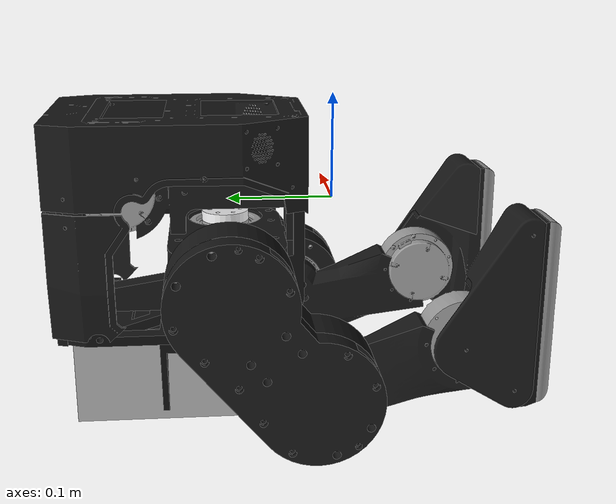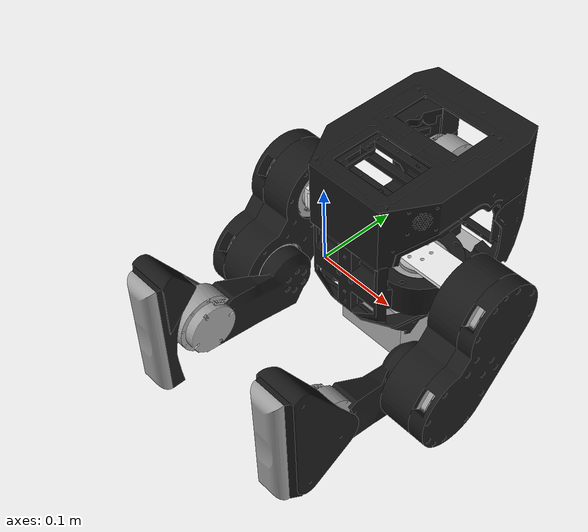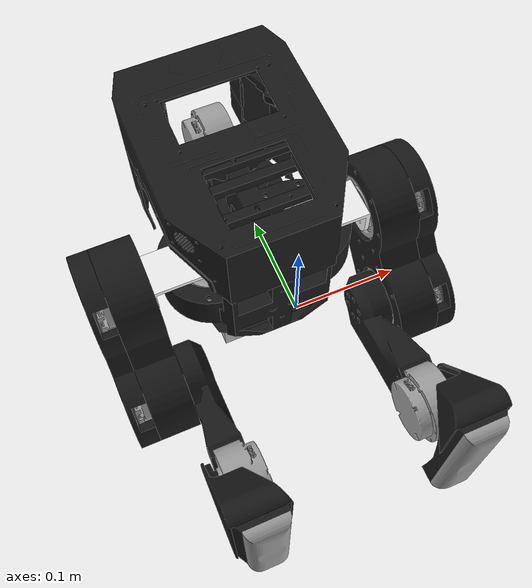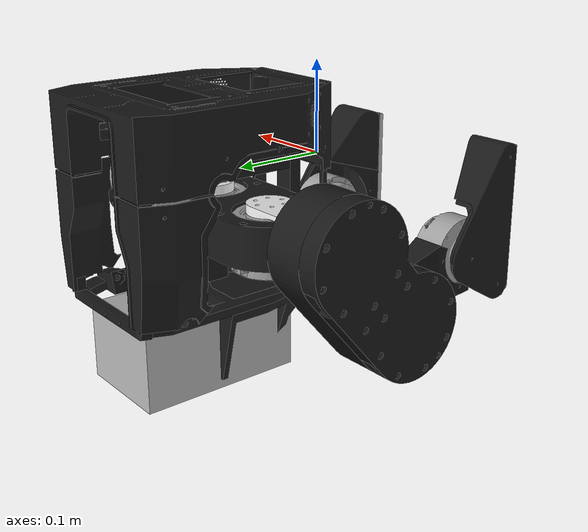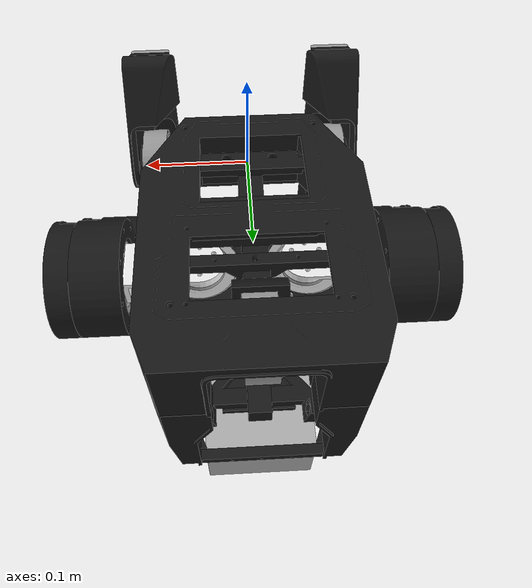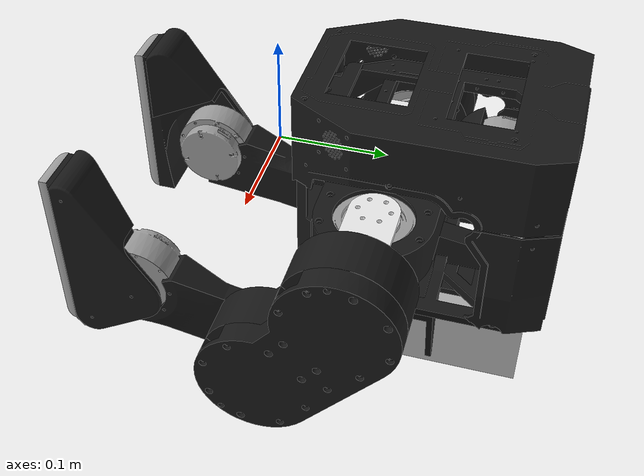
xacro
<?xml version="1.0"?>
<robot xmlns:xacro="http://www.ros.org/wiki/xacro" name="Floyd_URDF">

  <!-- Materials (shared across all assemblies) -->
  <material name="PET_Plastic">
    <color rgba="0.098 0.098 0.098 1.0"/>
  </material>
  <material name="Steel">
    <color rgba="0.627 0.627 0.627 1.0"/>
  </material>
  <material name="ABS_Plastic">
    <color rgba="0.702 0.702 0.702 1.0"/>
  </material>
  <material name="Aluminum">
    <color rgba="0.961 0.961 0.965 1.0"/>
  </material>

  <!-- Assembly includes -->
  <xacro:include filename="$(find Floyd_URDF_description)/urdf/assemblies/Floyd_URDF.urdf.xacro"/>

  <!-- Instantiate assemblies -->
  <xacro:Floyd_URDF prefix=""/>

</robot>

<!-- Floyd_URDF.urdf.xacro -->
<robot xmlns:xacro="http://www.ros.org/wiki/xacro" name="Floyd_URDF_macro">

  <xacro:macro name="Floyd_URDF" params="prefix">

    <!-- Links -->
    <link name="${prefix}base_link">
      <inertial>
        <origin xyz="0.000041 0.113645 -0.041341" rpy="0 0 0"/>
        <mass value="0.394155"/>
        <inertia ixx="1.408284e-03" ixy="-1.897436e-07" ixz="1.078543e-07"
                 iyy="1.214341e-03" iyz="3.732288e-05" izz="1.426591e-03"/>
      </inertial>
      <visual>
        <origin xyz="0.000000 0.000000 0.000000" rpy="0 0 0"/>
        <geometry>
          <mesh filename="package://Floyd_URDF_description/meshes/Floyd_URDF/base_link.dae" scale="1 1 1"/>
        </geometry>
        <material name="PET_Plastic"/>
      </visual>
      <collision>
        <origin xyz="0.000000 0.000000 0.000000" rpy="0 0 0"/>
        <geometry>
          <mesh filename="package://Floyd_URDF_description/meshes/Floyd_URDF/base_link_collision.stl" scale="0.01 0.01 0.01"/>
        </geometry>
      </collision>
    </link>

    <link name="${prefix}RS02">
      <inertial>
        <origin xyz="-0.000001 -0.000017 -0.018675" rpy="0 0 0"/>
        <mass value="1.432272"/>
        <inertia ixx="6.984698e-04" ixy="-9.381074e-08" ixz="-1.398595e-08"
                 iyy="6.965342e-04" iyz="-1.504158e-07" izz="9.983122e-04"/>
      </inertial>
      <visual>
        <origin xyz="0.000000 0.000000 0.000000" rpy="0 0 0"/>
        <geometry>
          <mesh filename="package://Floyd_URDF_description/meshes/Floyd_URDF/RS02.dae" scale="1 1 1"/>
        </geometry>
        <material name="Steel"/>
      </visual>
      <collision>
        <origin xyz="0.000000 0.000000 0.000000" rpy="0 0 0"/>
        <geometry>
          <mesh filename="package://Floyd_URDF_description/meshes/Floyd_URDF/RS02_collision.stl" scale="0.01 0.01 0.01"/>
        </geometry>
      </collision>
    </link>

    <link name="${prefix}BellyBase">
      <inertial>
        <origin xyz="0.000434 0.084808 -0.094523" rpy="0 0 0"/>
        <mass value="0.098302"/>
        <inertia ixx="2.201126e-04" ixy="9.433723e-09" ixz="-7.509861e-10"
                 iyy="1.164424e-04" iyz="6.927696e-09" izz="3.329250e-04"/>
      </inertial>
      <visual>
        <origin xyz="0.000000 0.000000 0.000000" rpy="0 0 0"/>
        <geometry>
          <mesh filename="package://Floyd_URDF_description/meshes/Floyd_URDF/BellyBase.dae" scale="1 1 1"/>
        </geometry>
        <material name="PET_Plastic"/>
      </visual>
      <collision>
        <origin xyz="0.000000 0.000000 0.000000" rpy="0 0 0"/>
        <geometry>
          <mesh filename="package://Floyd_URDF_description/meshes/Floyd_URDF/BellyBase_collision.stl" scale="0.01 0.01 0.01"/>
        </geometry>
      </collision>
    </link>

    <link name="${prefix}FrontBase">
      <inertial>
        <origin xyz="0.000457 0.017194 -0.002132" rpy="0 0 0"/>
        <mass value="0.138068"/>
        <inertia ixx="6.174463e-04" ixy="-2.860063e-08" ixz="3.650685e-08"
                 iyy="1.120639e-03" iyz="-1.367391e-05" izz="5.150193e-04"/>
      </inertial>
      <visual>
        <origin xyz="0.000000 0.000000 0.000000" rpy="0 0 0"/>
        <geometry>
          <mesh filename="package://Floyd_URDF_description/meshes/Floyd_URDF/FrontBase.dae" scale="1 1 1"/>
        </geometry>
        <material name="PET_Plastic"/>
      </visual>
      <collision>
        <origin xyz="0.000000 0.000000 0.000000" rpy="0 0 0"/>
        <geometry>
          <mesh filename="package://Floyd_URDF_description/meshes/Floyd_URDF/FrontBase_collision.stl" scale="0.01 0.01 0.01"/>
        </geometry>
      </collision>
    </link>

    <link name="${prefix}Back_Base">
      <inertial>
        <origin xyz="-0.000050 0.151327 -0.111932" rpy="0 0 0"/>
        <mass value="0.101249"/>
        <inertia ixx="3.725083e-04" ixy="8.736840e-10" ixz="-3.394402e-11"
                 iyy="2.599864e-04" iyz="-6.653377e-07" izz="6.296030e-04"/>
      </inertial>
      <visual>
        <origin xyz="0.000000 0.000000 0.000000" rpy="0 0 0"/>
        <geometry>
          <mesh filename="package://Floyd_URDF_description/meshes/Floyd_URDF/Back_Base.dae" scale="1 1 1"/>
        </geometry>
        <material name="PET_Plastic"/>
      </visual>
      <collision>
        <origin xyz="0.000000 0.000000 0.000000" rpy="0 0 0"/>
        <geometry>
          <mesh filename="package://Floyd_URDF_description/meshes/Floyd_URDF/Back_Base_collision.stl" scale="0.01 0.01 0.01"/>
        </geometry>
      </collision>
    </link>

    <link name="${prefix}RS03_LeftHipRoll">
      <inertial>
        <origin xyz="0.000055 -0.000035 0.032499" rpy="0 0 0"/>
        <mass value="0.938962"/>
        <inertia ixx="9.276459e-04" ixy="6.261216e-07" ixz="1.050868e-06"
                 iyy="8.887321e-04" iyz="-6.740456e-06" izz="1.219927e-03"/>
      </inertial>
      <visual>
        <origin xyz="0.000000 0.000000 0.000000" rpy="0 0 0"/>
        <geometry>
          <mesh filename="package://Floyd_URDF_description/meshes/Floyd_URDF/RS03_LeftHipRoll.dae" scale="1 1 1"/>
        </geometry>
        <material name="Steel"/>
      </visual>
      <collision>
        <origin xyz="0.000000 0.000000 0.000000" rpy="0 0 0"/>
        <geometry>
          <mesh filename="package://Floyd_URDF_description/meshes/Floyd_URDF/RS03_LeftHipRoll_collision.stl" scale="0.01 0.01 0.01"/>
        </geometry>
      </collision>
    </link>

    <link name="${prefix}RS03_RightHipRoll">
      <inertial>
        <origin xyz="0.000055 -0.000035 0.032499" rpy="0 0 0"/>
        <mass value="0.938962"/>
        <inertia ixx="9.276459e-04" ixy="6.261216e-07" ixz="1.050868e-06"
                 iyy="8.887321e-04" iyz="-6.740456e-06" izz="1.219927e-03"/>
      </inertial>
      <visual>
        <origin xyz="0.000000 0.000000 0.000000" rpy="0 0 0"/>
        <geometry>
          <mesh filename="package://Floyd_URDF_description/meshes/Floyd_URDF/RS03_RightHipRoll.dae" scale="1 1 1"/>
        </geometry>
        <material name="Steel"/>
      </visual>
      <collision>
        <origin xyz="0.000000 0.000000 0.000000" rpy="0 0 0"/>
        <geometry>
          <mesh filename="package://Floyd_URDF_description/meshes/Floyd_URDF/RS03_RightHipRoll_collision.stl" scale="0.01 0.01 0.01"/>
        </geometry>
      </collision>
    </link>

    <link name="${prefix}FrontPanel">
      <inertial>
        <origin xyz="-0.000021 -0.000087 0.011946" rpy="0 0 0"/>
        <mass value="0.124478"/>
        <inertia ixx="1.026147e-03" ixy="-5.440937e-08" ixz="2.044978e-07"
                 iyy="1.462744e-03" iyz="2.508271e-05" izz="6.075604e-04"/>
      </inertial>
      <visual>
        <origin xyz="0.000000 0.000000 0.000000" rpy="0 0 0"/>
        <geometry>
          <mesh filename="package://Floyd_URDF_description/meshes/Floyd_URDF/FrontPanel.dae" scale="1 1 1"/>
        </geometry>
        <material name="PET_Plastic"/>
      </visual>
      <collision>
        <origin xyz="0.000000 0.000000 0.000000" rpy="0 0 0"/>
        <geometry>
          <mesh filename="package://Floyd_URDF_description/meshes/Floyd_URDF/FrontPanel_collision.stl" scale="0.01 0.01 0.01"/>
        </geometry>
      </collision>
    </link>

    <link name="${prefix}LowerPanel">
      <inertial>
        <origin xyz="0.000574 0.086802 -0.101696" rpy="0 0 0"/>
        <mass value="0.017805"/>
        <inertia ixx="4.766835e-06" ixy="1.232844e-08" ixz="-2.838666e-08"
                 iyy="2.594866e-05" iyz="9.691213e-08" izz="3.009190e-05"/>
      </inertial>
      <collision>
        <origin xyz="0.000000 0.000000 0.000000" rpy="0 0 0"/>
        <geometry>
          <mesh filename="package://Floyd_URDF_description/meshes/Floyd_URDF/LowerPanel_collision.stl" scale="0.01 0.01 0.01"/>
        </geometry>
      </collision>
    </link>

    <link name="${prefix}TopBase">
      <inertial>
        <origin xyz="0.000443 0.066289 0.121506" rpy="0 0 0"/>
        <mass value="0.086052"/>
        <inertia ixx="3.202494e-04" ixy="-4.481170e-10" ixz="6.232997e-11"
                 iyy="3.138761e-04" iyz="1.344030e-06" izz="6.319658e-04"/>
      </inertial>
      <visual>
        <origin xyz="0.000000 0.000000 0.000000" rpy="0 0 0"/>
        <geometry>
          <mesh filename="package://Floyd_URDF_description/meshes/Floyd_URDF/TopBase.dae" scale="1 1 1"/>
        </geometry>
        <material name="PET_Plastic"/>
      </visual>
      <collision>
        <origin xyz="0.000000 0.000000 0.000000" rpy="0 0 0"/>
        <geometry>
          <mesh filename="package://Floyd_URDF_description/meshes/Floyd_URDF/TopBase_collision.stl" scale="0.01 0.01 0.01"/>
        </geometry>
      </collision>
    </link>

    <link name="${prefix}Tail_Base">
      <inertial>
        <origin xyz="-0.000008 0.123720 -0.119364" rpy="0 0 0"/>
        <mass value="0.094793"/>
        <inertia ixx="8.300694e-05" ixy="5.149743e-08" ixz="-7.174040e-09"
                 iyy="2.193858e-04" iyz="5.202700e-06" izz="2.742215e-04"/>
      </inertial>
      <visual>
        <origin xyz="0.000000 0.000000 0.000000" rpy="0 0 0"/>
        <geometry>
          <mesh filename="package://Floyd_URDF_description/meshes/Floyd_URDF/Tail_Base.dae" scale="1 1 1"/>
        </geometry>
        <material name="PET_Plastic"/>
      </visual>
      <collision>
        <origin xyz="0.000000 0.000000 0.000000" rpy="0 0 0"/>
        <geometry>
          <mesh filename="package://Floyd_URDF_description/meshes/Floyd_URDF/Tail_Base_collision.stl" scale="0.01 0.01 0.01"/>
        </geometry>
      </collision>
    </link>

    <link name="${prefix}Battery_Mount">
      <inertial>
        <origin xyz="0.000000 0.150935 -0.122445" rpy="0 0 0"/>
        <mass value="0.046707"/>
        <inertia ixx="6.053243e-05" ixy="-8.358700e-17" ixz="-2.134479e-17"
                 iyy="2.594989e-05" iyz="1.309662e-08" izz="8.488730e-05"/>
      </inertial>
      <visual>
        <origin xyz="0.000000 0.000000 0.000000" rpy="0 0 0"/>
        <geometry>
          <mesh filename="package://Floyd_URDF_description/meshes/Floyd_URDF/Battery_Mount.dae" scale="1 1 1"/>
        </geometry>
        <material name="PET_Plastic"/>
      </visual>
      <collision>
        <origin xyz="0.000000 0.000000 0.000000" rpy="0 0 0"/>
        <geometry>
          <mesh filename="package://Floyd_URDF_description/meshes/Floyd_URDF/Battery_Mount_collision.stl" scale="0.01 0.01 0.01"/>
        </geometry>
      </collision>
    </link>

    <link name="${prefix}HipRollMountLeft">
      <inertial>
        <origin xyz="0.029877 -0.000000 -0.002039" rpy="0 0 0"/>
        <mass value="0.099119"/>
        <inertia ixx="2.527369e-05" ixy="1.591640e-17" ixz="-1.343212e-05"
                 iyy="1.022096e-04" iyz="6.665319e-18" izz="1.100274e-04"/>
      </inertial>
      <visual>
        <origin xyz="-0.000000 0.000000 -0.047500" rpy="0 0 0"/>
        <geometry>
          <mesh filename="package://Floyd_URDF_description/meshes/Floyd_URDF/HipRollMountLeft.dae" scale="1 1 1"/>
        </geometry>
        <material name="Aluminum"/>
      </visual>
      <collision>
        <origin xyz="-0.000000 0.000000 -0.047500" rpy="0 0 0"/>
        <geometry>
          <mesh filename="package://Floyd_URDF_description/meshes/Floyd_URDF/HipRollMountLeft_collision.stl" scale="0.01 0.01 0.01"/>
        </geometry>
      </collision>
    </link>

    <link name="${prefix}HipRollMountRight">
      <inertial>
        <origin xyz="0.029877 -0.000000 0.002039" rpy="0 0 0"/>
        <mass value="0.099119"/>
        <inertia ixx="2.527369e-05" ixy="1.623018e-17" ixz="1.343212e-05"
                 iyy="1.022096e-04" iyz="-6.557230e-18" izz="1.100274e-04"/>
      </inertial>
      <visual>
        <origin xyz="0.000000 -0.000000 0.047500" rpy="0 0 0"/>
        <geometry>
          <mesh filename="package://Floyd_URDF_description/meshes/Floyd_URDF/HipRollMountRight.dae" scale="1 1 1"/>
        </geometry>
        <material name="Aluminum"/>
      </visual>
      <collision>
        <origin xyz="0.000000 -0.000000 0.047500" rpy="0 0 0"/>
        <geometry>
          <mesh filename="package://Floyd_URDF_description/meshes/Floyd_URDF/HipRollMountRight_collision.stl" scale="0.01 0.01 0.01"/>
        </geometry>
      </collision>
    </link>

    <link name="${prefix}TopRightPanel">
      <inertial>
        <origin xyz="0.071691 0.101272 -0.108532" rpy="0 0 0"/>
        <mass value="0.017563"/>
        <inertia ixx="2.667521e-05" ixy="-1.035279e-06" ixz="-3.676503e-06"
                 iyy="1.204879e-05" iyz="2.401303e-07" izz="2.453708e-05"/>
      </inertial>
      <visual>
        <origin xyz="0.000000 0.000000 0.000000" rpy="0 0 0"/>
        <geometry>
          <mesh filename="package://Floyd_URDF_description/meshes/Floyd_URDF/TopRightPanel.dae" scale="1 1 1"/>
        </geometry>
        <material name="PET_Plastic"/>
      </visual>
      <collision>
        <origin xyz="0.000000 0.000000 0.000000" rpy="0 0 0"/>
        <geometry>
          <mesh filename="package://Floyd_URDF_description/meshes/Floyd_URDF/TopRightPanel_collision.stl" scale="0.01 0.01 0.01"/>
        </geometry>
      </collision>
    </link>

    <link name="${prefix}TopLeftPanel">
      <inertial>
        <origin xyz="0.071691 0.101272 0.108532" rpy="0 0 0"/>
        <mass value="0.017563"/>
        <inertia ixx="2.667521e-05" ixy="-1.035279e-06" ixz="3.676503e-06"
                 iyy="1.204879e-05" iyz="-2.401303e-07" izz="2.453708e-05"/>
      </inertial>
      <visual>
        <origin xyz="0.000000 0.000000 0.000000" rpy="0 0 0"/>
        <geometry>
          <mesh filename="package://Floyd_URDF_description/meshes/Floyd_URDF/TopLeftPanel.dae" scale="1 1 1"/>
        </geometry>
        <material name="PET_Plastic"/>
      </visual>
      <collision>
        <origin xyz="0.000000 0.000000 0.000000" rpy="0 0 0"/>
        <geometry>
          <mesh filename="package://Floyd_URDF_description/meshes/Floyd_URDF/TopLeftPanel_collision.stl" scale="0.01 0.01 0.01"/>
        </geometry>
      </collision>
    </link>

    <link name="${prefix}Battery">
      <inertial>
        <origin xyz="-0.000050 0.158057 -0.163750" rpy="0 0 0"/>
        <mass value="1.271546"/>
        <inertia ixx="3.740463e-03" ixy="-1.016440e-18" ixz="6.132519e-19"
                 iyy="1.824244e-03" iyz="-6.938894e-18" izz="4.208392e-03"/>
      </inertial>
      <visual>
        <origin xyz="0.000000 0.000000 0.000000" rpy="0 0 0"/>
        <geometry>
          <mesh filename="package://Floyd_URDF_description/meshes/Floyd_URDF/Battery.dae" scale="1 1 1"/>
        </geometry>
        <material name="ABS_Plastic"/>
      </visual>
      <collision>
        <origin xyz="0.000000 0.000000 0.000000" rpy="0 0 0"/>
        <geometry>
          <mesh filename="package://Floyd_URDF_description/meshes/Floyd_URDF/Battery_collision.stl" scale="0.01 0.01 0.01"/>
        </geometry>
      </collision>
    </link>

    <link name="${prefix}RS03_LeftHipPitch">
      <inertial>
        <origin xyz="0.000055 -0.000034 -0.024100" rpy="0 0 0"/>
        <mass value="0.938932"/>
        <inertia ixx="9.275979e-04" ixy="6.289261e-07" ixz="1.055599e-06"
                 iyy="8.887117e-04" iyz="-6.728938e-06" izz="1.219887e-03"/>
      </inertial>
      <visual>
        <origin xyz="-0.000000 0.000000 -0.056600" rpy="0 0 0"/>
        <geometry>
          <mesh filename="package://Floyd_URDF_description/meshes/Floyd_URDF/RS03_LeftHipPitch.dae" scale="1 1 1"/>
        </geometry>
        <material name="Steel"/>
      </visual>
      <collision>
        <origin xyz="-0.000000 0.000000 -0.056600" rpy="0 0 0"/>
        <geometry>
          <mesh filename="package://Floyd_URDF_description/meshes/Floyd_URDF/RS03_LeftHipPitch_collision.stl" scale="0.01 0.01 0.01"/>
        </geometry>
      </collision>
    </link>

    <link name="${prefix}RS03_RightHipPitch">
      <inertial>
        <origin xyz="0.000055 -0.000034 -0.024100" rpy="0 0 0"/>
        <mass value="0.938932"/>
        <inertia ixx="9.275979e-04" ixy="6.289261e-07" ixz="1.055599e-06"
                 iyy="8.887117e-04" iyz="-6.728938e-06" izz="1.219887e-03"/>
      </inertial>
      <visual>
        <origin xyz="-0.000000 0.000000 -0.056600" rpy="0 0 0"/>
        <geometry>
          <mesh filename="package://Floyd_URDF_description/meshes/Floyd_URDF/RS03_RightHipPitch.dae" scale="1 1 1"/>
        </geometry>
        <material name="Steel"/>
      </visual>
      <collision>
        <origin xyz="-0.000000 0.000000 -0.056600" rpy="0 0 0"/>
        <geometry>
          <mesh filename="package://Floyd_URDF_description/meshes/Floyd_URDF/RS03_RightHipPitch_collision.stl" scale="0.01 0.01 0.01"/>
        </geometry>
      </collision>
    </link>

    <link name="${prefix}ThighMountFemaleLeft">
      <inertial>
        <origin xyz="0.089238 -0.056193 0.051560" rpy="0 0 0"/>
        <mass value="0.235725"/>
        <inertia ixx="1.147473e-03" ixy="6.709431e-07" ixz="2.894154e-06"
                 iyy="3.702857e-04" iyz="1.508304e-06" izz="8.628353e-04"/>
      </inertial>
      <visual>
        <origin xyz="0.000000 0.000000 0.000000" rpy="0 0 0"/>
        <geometry>
          <mesh filename="package://Floyd_URDF_description/meshes/Floyd_URDF/ThighMountFemaleLeft.dae" scale="1 1 1"/>
        </geometry>
        <material name="PET_Plastic"/>
      </visual>
      <collision>
        <origin xyz="0.000000 0.000000 0.000000" rpy="0 0 0"/>
        <geometry>
          <mesh filename="package://Floyd_URDF_description/meshes/Floyd_URDF/ThighMountFemaleLeft_collision.stl" scale="0.01 0.01 0.01"/>
        </geometry>
      </collision>
    </link>

    <link name="${prefix}ThighMountFemaleRight">
      <inertial>
        <origin xyz="0.089238 -0.056193 -0.051560" rpy="0 0 0"/>
        <mass value="0.235725"/>
        <inertia ixx="1.147473e-03" ixy="6.709431e-07" ixz="-2.894154e-06"
                 iyy="3.702857e-04" iyz="-1.508304e-06" izz="8.628353e-04"/>
      </inertial>
      <visual>
        <origin xyz="0.000000 0.000000 0.000000" rpy="0 0 0"/>
        <geometry>
          <mesh filename="package://Floyd_URDF_description/meshes/Floyd_URDF/ThighMountFemaleRight.dae" scale="1 1 1"/>
        </geometry>
        <material name="PET_Plastic"/>
      </visual>
      <collision>
        <origin xyz="0.000000 0.000000 0.000000" rpy="0 0 0"/>
        <geometry>
          <mesh filename="package://Floyd_URDF_description/meshes/Floyd_URDF/ThighMountFemaleRight_collision.stl" scale="0.01 0.01 0.01"/>
        </geometry>
      </collision>
    </link>

    <link name="${prefix}ThighMountMaleLeft">
      <inertial>
        <origin xyz="0.126251 -0.055482 0.054596" rpy="0 0 0"/>
        <mass value="0.196896"/>
        <inertia ixx="9.078561e-04" ixy="-6.215341e-10" ixz="-1.699958e-06"
                 iyy="1.918954e-04" iyz="7.027079e-07" izz="7.317574e-04"/>
      </inertial>
      <visual>
        <origin xyz="0.000000 0.000000 0.000000" rpy="0 0 0"/>
        <geometry>
          <mesh filename="package://Floyd_URDF_description/meshes/Floyd_URDF/ThighMountMaleLeft.dae" scale="1 1 1"/>
        </geometry>
        <material name="PET_Plastic"/>
      </visual>
      <collision>
        <origin xyz="0.000000 0.000000 0.000000" rpy="0 0 0"/>
        <geometry>
          <mesh filename="package://Floyd_URDF_description/meshes/Floyd_URDF/ThighMountMaleLeft_collision.stl" scale="0.01 0.01 0.01"/>
        </geometry>
      </collision>
    </link>

    <link name="${prefix}RS03_LeftKneePitch">
      <inertial>
        <origin xyz="0.000055 -0.000034 0.032500" rpy="0 0 0"/>
        <mass value="0.938932"/>
        <inertia ixx="9.275979e-04" ixy="6.289261e-07" ixz="1.055599e-06"
                 iyy="8.887117e-04" iyz="-6.728938e-06" izz="1.219887e-03"/>
      </inertial>
      <visual>
        <origin xyz="0.000000 0.000000 0.000000" rpy="0 0 0"/>
        <geometry>
          <mesh filename="package://Floyd_URDF_description/meshes/Floyd_URDF/RS03_LeftKneePitch.dae" scale="1 1 1"/>
        </geometry>
        <material name="Steel"/>
      </visual>
      <collision>
        <origin xyz="0.000000 0.000000 0.000000" rpy="0 0 0"/>
        <geometry>
          <mesh filename="package://Floyd_URDF_description/meshes/Floyd_URDF/RS03_LeftKneePitch_collision.stl" scale="0.01 0.01 0.01"/>
        </geometry>
      </collision>
    </link>

    <link name="${prefix}ThighMountMaleRight">
      <inertial>
        <origin xyz="0.126251 -0.055482 -0.054596" rpy="0 0 0"/>
        <mass value="0.196896"/>
        <inertia ixx="9.078561e-04" ixy="-6.215341e-10" ixz="1.699958e-06"
                 iyy="1.918954e-04" iyz="-7.027079e-07" izz="7.317574e-04"/>
      </inertial>
      <visual>
        <origin xyz="0.000000 0.000000 0.000000" rpy="0 0 0"/>
        <geometry>
          <mesh filename="package://Floyd_URDF_description/meshes/Floyd_URDF/ThighMountMaleRight.dae" scale="1 1 1"/>
        </geometry>
        <material name="PET_Plastic"/>
      </visual>
      <collision>
        <origin xyz="0.000000 0.000000 0.000000" rpy="0 0 0"/>
        <geometry>
          <mesh filename="package://Floyd_URDF_description/meshes/Floyd_URDF/ThighMountMaleRight_collision.stl" scale="0.01 0.01 0.01"/>
        </geometry>
      </collision>
    </link>

    <link name="${prefix}RS03_RightKneePitch">
      <inertial>
        <origin xyz="0.000055 -0.000034 -0.032500" rpy="0 0 0"/>
        <mass value="0.938938"/>
        <inertia ixx="9.276073e-04" ixy="6.289306e-07" ixz="-1.052974e-06"
                 iyy="8.887210e-04" iyz="6.728513e-06" izz="1.219897e-03"/>
      </inertial>
      <visual>
        <origin xyz="0.000000 0.000000 0.000000" rpy="0 0 0"/>
        <geometry>
          <mesh filename="package://Floyd_URDF_description/meshes/Floyd_URDF/RS03_RightKneePitch.dae" scale="1 1 1"/>
        </geometry>
        <material name="Steel"/>
      </visual>
      <collision>
        <origin xyz="0.000000 0.000000 0.000000" rpy="0 0 0"/>
        <geometry>
          <mesh filename="package://Floyd_URDF_description/meshes/Floyd_URDF/RS03_RightKneePitch_collision.stl" scale="0.01 0.01 0.01"/>
        </geometry>
      </collision>
    </link>

    <link name="${prefix}LowerLegLeft">
      <inertial>
        <origin xyz="-0.017343 -0.043665 -0.011868" rpy="0 0 0"/>
        <mass value="0.203942"/>
        <inertia ixx="4.641541e-04" ixy="2.596602e-06" ixz="-2.728395e-06"
                 iyy="1.048877e-04" iyz="-4.847183e-05" izz="3.936618e-04"/>
      </inertial>
      <visual>
        <origin xyz="-0.071250 0.111000 -0.058592" rpy="0 0 0"/>
        <geometry>
          <mesh filename="package://Floyd_URDF_description/meshes/Floyd_URDF/LowerLegLeft.dae" scale="1 1 1"/>
        </geometry>
        <material name="PET_Plastic"/>
      </visual>
      <collision>
        <origin xyz="-0.071250 0.111000 -0.058592" rpy="0 0 0"/>
        <geometry>
          <mesh filename="package://Floyd_URDF_description/meshes/Floyd_URDF/LowerLegLeft_collision.stl" scale="0.01 0.01 0.01"/>
        </geometry>
      </collision>
    </link>

    <link name="${prefix}LowerLegRight">
      <inertial>
        <origin xyz="-0.017343 -0.043665 0.011868" rpy="0 0 0"/>
        <mass value="0.203942"/>
        <inertia ixx="4.641541e-04" ixy="2.596602e-06" ixz="2.728395e-06"
                 iyy="1.048877e-04" iyz="4.847183e-05" izz="3.936618e-04"/>
      </inertial>
      <visual>
        <origin xyz="-0.071250 0.111000 0.058593" rpy="0 0 0"/>
        <geometry>
          <mesh filename="package://Floyd_URDF_description/meshes/Floyd_URDF/LowerLegRight.dae" scale="1 1 1"/>
        </geometry>
        <material name="PET_Plastic"/>
      </visual>
      <collision>
        <origin xyz="-0.071250 0.111000 0.058593" rpy="0 0 0"/>
        <geometry>
          <mesh filename="package://Floyd_URDF_description/meshes/Floyd_URDF/LowerLegRight_collision.stl" scale="0.01 0.01 0.01"/>
        </geometry>
      </collision>
    </link>

    <link name="${prefix}RS02_LeftAnklePitch">
      <inertial>
        <origin xyz="-0.000001 -0.000017 -0.018675" rpy="0 0 0"/>
        <mass value="1.432272"/>
        <inertia ixx="6.984698e-04" ixy="-9.381074e-08" ixz="-1.398595e-08"
                 iyy="6.965342e-04" iyz="-1.504158e-07" izz="9.983122e-04"/>
      </inertial>
      <visual>
        <origin xyz="0.000000 0.000000 0.000000" rpy="0 0 0"/>
        <geometry>
          <mesh filename="package://Floyd_URDF_description/meshes/Floyd_URDF/RS02_LeftAnklePitch.dae" scale="1 1 1"/>
        </geometry>
        <material name="Steel"/>
      </visual>
      <collision>
        <origin xyz="0.000000 0.000000 0.000000" rpy="0 0 0"/>
        <geometry>
          <mesh filename="package://Floyd_URDF_description/meshes/Floyd_URDF/RS02_LeftAnklePitch_collision.stl" scale="0.01 0.01 0.01"/>
        </geometry>
      </collision>
    </link>

    <link name="${prefix}RS02_RightAnklePitch">
      <inertial>
        <origin xyz="-0.000001 -0.000017 0.018675" rpy="0 0 0"/>
        <mass value="1.432272"/>
        <inertia ixx="6.984697e-04" ixy="-9.381083e-08" ixz="1.398023e-08"
                 iyy="6.965341e-04" iyz="1.504278e-07" izz="9.983121e-04"/>
      </inertial>
      <visual>
        <origin xyz="0.000000 0.000000 0.000000" rpy="0 0 0"/>
        <geometry>
          <mesh filename="package://Floyd_URDF_description/meshes/Floyd_URDF/RS02_RightAnklePitch.dae" scale="1 1 1"/>
        </geometry>
        <material name="Steel"/>
      </visual>
      <collision>
        <origin xyz="0.000000 0.000000 0.000000" rpy="0 0 0"/>
        <geometry>
          <mesh filename="package://Floyd_URDF_description/meshes/Floyd_URDF/RS02_RightAnklePitch_collision.stl" scale="0.01 0.01 0.01"/>
        </geometry>
      </collision>
    </link>

    <link name="${prefix}FootBaseLeft">
      <inertial>
        <origin xyz="-0.008444 -0.024088 -0.043158" rpy="0 0 0"/>
        <mass value="0.129340"/>
        <inertia ixx="3.556114e-04" ixy="-7.520558e-06" ixz="-2.395612e-05"
                 iyy="9.836110e-05" iyz="-1.249472e-05" izz="3.254246e-04"/>
      </inertial>
      <visual>
        <origin xyz="-0.118071 -0.137704 0.226786" rpy="0 0 0"/>
        <geometry>
          <mesh filename="package://Floyd_URDF_description/meshes/Floyd_URDF/FootBaseLeft.dae" scale="1 1 1"/>
        </geometry>
        <material name="PET_Plastic"/>
      </visual>
      <collision>
        <origin xyz="-0.118071 -0.137704 0.226786" rpy="0 0 0"/>
        <geometry>
          <mesh filename="package://Floyd_URDF_description/meshes/Floyd_URDF/FootBaseLeft_collision.stl" scale="0.01 0.01 0.01"/>
        </geometry>
      </collision>
    </link>

    <link name="${prefix}FootBaseRight">
      <inertial>
        <origin xyz="-0.008444 -0.024088 0.043158" rpy="0 0 0"/>
        <mass value="0.129340"/>
        <inertia ixx="3.556114e-04" ixy="-7.520558e-06" ixz="2.395612e-05"
                 iyy="9.836110e-05" iyz="1.249472e-05" izz="3.254246e-04"/>
      </inertial>
      <visual>
        <origin xyz="-0.118071 -0.137704 -0.226786" rpy="0 0 0"/>
        <geometry>
          <mesh filename="package://Floyd_URDF_description/meshes/Floyd_URDF/FootBaseRight.dae" scale="1 1 1"/>
        </geometry>
        <material name="PET_Plastic"/>
      </visual>
      <collision>
        <origin xyz="-0.118071 -0.137704 -0.226786" rpy="0 0 0"/>
        <geometry>
          <mesh filename="package://Floyd_URDF_description/meshes/Floyd_URDF/FootBaseRight_collision.stl" scale="0.01 0.01 0.01"/>
        </geometry>
      </collision>
    </link>

    <link name="${prefix}FootCoverLeft">
      <inertial>
        <origin xyz="0.115670 0.090150 -0.256187" rpy="0 0 0"/>
        <mass value="0.025806"/>
        <inertia ixx="7.466116e-05" ixy="-1.361931e-05" ixz="-3.315508e-06"
                 iyy="2.186713e-05" iyz="-1.020207e-05" izz="7.251174e-05"/>
      </inertial>
      <visual>
        <origin xyz="0.000000 0.000000 0.000000" rpy="0 0 0"/>
        <geometry>
          <mesh filename="package://Floyd_URDF_description/meshes/Floyd_URDF/FootCoverLeft.dae" scale="1 1 1"/>
        </geometry>
        <material name="PET_Plastic"/>
      </visual>
      <collision>
        <origin xyz="0.000000 0.000000 0.000000" rpy="0 0 0"/>
        <geometry>
          <mesh filename="package://Floyd_URDF_description/meshes/Floyd_URDF/FootCoverLeft_collision.stl" scale="0.01 0.01 0.01"/>
        </geometry>
      </collision>
    </link>

    <link name="${prefix}FootPadLeft">
      <inertial>
        <origin xyz="0.099043 0.111765 -0.298244" rpy="0 0 0"/>
        <mass value="0.797270"/>
        <inertia ixx="1.834157e-03" ixy="5.954845e-09" ixz="-7.915263e-08"
                 iyy="1.136861e-04" iyz="-5.702188e-06" izz="1.909860e-03"/>
      </inertial>
      <visual>
        <origin xyz="0.000000 0.000000 0.000000" rpy="0 0 0"/>
        <geometry>
          <mesh filename="package://Floyd_URDF_description/meshes/Floyd_URDF/FootPadLeft.dae" scale="1 1 1"/>
        </geometry>
        <material name="Steel"/>
      </visual>
      <collision>
        <origin xyz="0.000000 0.000000 0.000000" rpy="0 0 0"/>
        <geometry>
          <mesh filename="package://Floyd_URDF_description/meshes/Floyd_URDF/FootPadLeft_collision.stl" scale="0.01 0.01 0.01"/>
        </geometry>
      </collision>
    </link>

    <link name="${prefix}FootCoverRight">
      <inertial>
        <origin xyz="0.115669 0.090146 0.256187" rpy="0 0 0"/>
        <mass value="0.025807"/>
        <inertia ixx="7.466704e-05" ixy="-1.362016e-05" ixz="3.315386e-06"
                 iyy="2.186690e-05" iyz="1.020217e-05" izz="7.251843e-05"/>
      </inertial>
      <visual>
        <origin xyz="0.000000 0.000000 0.000000" rpy="0 0 0"/>
        <geometry>
          <mesh filename="package://Floyd_URDF_description/meshes/Floyd_URDF/FootCoverRight.dae" scale="1 1 1"/>
        </geometry>
        <material name="PET_Plastic"/>
      </visual>
      <collision>
        <origin xyz="0.000000 0.000000 0.000000" rpy="0 0 0"/>
        <geometry>
          <mesh filename="package://Floyd_URDF_description/meshes/Floyd_URDF/FootCoverRight_collision.stl" scale="0.01 0.01 0.01"/>
        </geometry>
      </collision>
    </link>

    <link name="${prefix}FootPadRight">
      <inertial>
        <origin xyz="0.099043 0.111762 0.298242" rpy="0 0 0"/>
        <mass value="0.797489"/>
        <inertia ixx="1.834695e-03" ixy="-3.959480e-08" ixz="-9.508132e-08"
                 iyy="1.142863e-04" iyz="5.510822e-06" izz="1.909957e-03"/>
      </inertial>
      <visual>
        <origin xyz="0.000000 0.000000 0.000000" rpy="0 0 0"/>
        <geometry>
          <mesh filename="package://Floyd_URDF_description/meshes/Floyd_URDF/FootPadRight.dae" scale="1 1 1"/>
        </geometry>
        <material name="Steel"/>
      </visual>
      <collision>
        <origin xyz="0.000000 0.000000 0.000000" rpy="0 0 0"/>
        <geometry>
          <mesh filename="package://Floyd_URDF_description/meshes/Floyd_URDF/FootPadRight_collision.stl" scale="0.01 0.01 0.01"/>
        </geometry>
      </collision>
    </link>

    <!-- Joints (internal to assembly) -->
    <joint name="${prefix}Rigid_47" type="fixed">
      <parent link="${prefix}base_link"/>
      <child link="${prefix}RS02"/>
      <origin xyz="0.013750 0.200264 0.011850" rpy="-1.570796 -0.000000 -1.570796"/>
    </joint>

    <joint name="${prefix}Rigid_48" type="fixed">
      <parent link="${prefix}base_link"/>
      <child link="${prefix}BellyBase"/>
      <origin xyz="-0.000393 0.133156 0.057146" rpy="-1.570796 -0.000000 0.000000"/>
    </joint>

    <joint name="${prefix}Rigid_49" type="fixed">
      <parent link="${prefix}base_link"/>
      <child link="${prefix}FrontBase"/>
      <origin xyz="-0.000393 0.133156 0.056746" rpy="-1.570796 -0.000000 0.000000"/>
    </joint>

    <joint name="${prefix}Rigid_50" type="fixed">
      <parent link="${prefix}base_link"/>
      <child link="${prefix}Back_Base"/>
      <origin xyz="0.000000 0.000000 0.000150" rpy="-0.000000 0.000000 -0.000000"/>
    </joint>

    <joint name="${prefix}Rigid_54" type="fixed">
      <parent link="${prefix}base_link"/>
      <child link="${prefix}RS03_LeftHipRoll"/>
      <origin xyz="0.050050 0.102099 -0.090118" rpy="0.000001 0.000000 -1.570796"/>
    </joint>

    <joint name="${prefix}Rigid_55" type="fixed">
      <parent link="${prefix}base_link"/>
      <child link="${prefix}RS03_RightHipRoll"/>
      <origin xyz="-0.049950 0.102099 -0.090118" rpy="-0.000001 0.000000 1.570796"/>
    </joint>

    <joint name="${prefix}Rigid_58" type="fixed">
      <parent link="${prefix}BellyBase"/>
      <child link="${prefix}FrontPanel"/>
      <origin xyz="0.000443 -0.000104 -0.000000" rpy="0.000000 0.000000 0.000000"/>
    </joint>

    <joint name="${prefix}Rigid_63" type="fixed">
      <parent link="${prefix}BellyBase"/>
      <child link="${prefix}LowerPanel"/>
      <origin xyz="-0.000000 0.000000 0.000000" rpy="0.000000 0.000000 0.000000"/>
    </joint>

    <joint name="${prefix}Rigid_66" type="fixed">
      <parent link="${prefix}FrontBase"/>
      <child link="${prefix}TopBase"/>
      <origin xyz="-0.000000 -0.000000 -0.000200" rpy="0.000000 -0.000000 0.000000"/>
    </joint>

    <joint name="${prefix}Rigid_51" type="fixed">
      <parent link="${prefix}Back_Base"/>
      <child link="${prefix}Tail_Base"/>
      <origin xyz="0.000000 0.000000 0.000000" rpy="0.000000 0.000000 0.000000"/>
    </joint>

    <joint name="${prefix}Rigid_52" type="fixed">
      <parent link="${prefix}Back_Base"/>
      <child link="${prefix}Battery_Mount"/>
      <origin xyz="0.000000 0.000000 0.000000" rpy="0.000000 0.000000 0.000000"/>
    </joint>

    <joint name="${prefix}LeftHipRoll" type="continuous">
      <parent link="${prefix}RS03_LeftHipRoll"/>
      <child link="${prefix}HipRollMountLeft"/>
      <origin xyz="0.000000 -0.000000 0.056600" rpy="3.141593 0.000000 1.570796"/>
      <axis xyz="-0.000000 0.000000 -1.000000"/>
      <limit effort="100.0" velocity="1.00"/>
    </joint>

    <joint name="${prefix}RightHipRoll" type="continuous">
      <parent link="${prefix}RS03_RightHipRoll"/>
      <child link="${prefix}HipRollMountRight"/>
      <origin xyz="0.000000 -0.000000 0.056600" rpy="-0.000000 0.000000 1.570796"/>
      <axis xyz="-0.000000 -0.000000 1.000000"/>
      <limit effort="100.0" velocity="1.00"/>
    </joint>

    <joint name="${prefix}Rigid_56" type="fixed">
      <parent link="${prefix}TopBase"/>
      <child link="${prefix}TopRightPanel"/>
      <origin xyz="0.000443 -0.000104 -0.000000" rpy="-3.141593 -0.000000 3.141593"/>
    </joint>

    <joint name="${prefix}Rigid_57" type="fixed">
      <parent link="${prefix}TopBase"/>
      <child link="${prefix}TopLeftPanel"/>
      <origin xyz="0.000443 -0.000104 -0.000000" rpy="0.000000 -0.000000 -0.000000"/>
    </joint>

    <joint name="${prefix}Rigid_53" type="fixed">
      <parent link="${prefix}Battery_Mount"/>
      <child link="${prefix}Battery"/>
      <origin xyz="0.000050 0.005043 0.000000" rpy="0.000000 0.000000 0.000000"/>
    </joint>

    <joint name="${prefix}LeftHipPitch" type="continuous">
      <parent link="${prefix}HipRollMountLeft"/>
      <child link="${prefix}RS03_LeftHipPitch"/>
      <origin xyz="0.071250 -0.000000 0.012093" rpy="-1.570796 0.698132 1.570796"/>
      <axis xyz="-0.000000 0.000000 -1.000000"/>
      <limit effort="100.0" velocity="1.00"/>
    </joint>

    <joint name="${prefix}RightHipPitch" type="continuous">
      <parent link="${prefix}HipRollMountRight"/>
      <child link="${prefix}RS03_RightHipPitch"/>
      <origin xyz="0.071250 -0.000000 -0.012092" rpy="1.570796 0.698132 -1.570796"/>
      <axis xyz="0.000000 0.000000 -1.000000"/>
      <limit effort="100.0" velocity="1.00"/>
    </joint>

    <joint name="${prefix}Rigid_59" type="fixed">
      <parent link="${prefix}RS03_LeftHipPitch"/>
      <child link="${prefix}ThighMountFemaleLeft"/>
      <origin xyz="-0.058592 0.000000 0.071250" rpy="0.000000 1.570796 0.000000"/>
    </joint>

    <joint name="${prefix}Rigid_61" type="fixed">
      <parent link="${prefix}RS03_RightHipPitch"/>
      <child link="${prefix}ThighMountFemaleRight"/>
      <origin xyz="0.058592 0.000000 0.071250" rpy="-0.000000 1.570796 0.000000"/>
    </joint>

    <joint name="${prefix}Rigid_17" type="fixed">
      <parent link="${prefix}ThighMountFemaleLeft"/>
      <child link="${prefix}ThighMountMaleLeft"/>
      <origin xyz="0.000000 0.000000 -0.000000" rpy="-0.000000 0.000000 0.000000"/>
    </joint>

    <joint name="${prefix}Rigid_64" type="fixed">
      <parent link="${prefix}ThighMountFemaleLeft"/>
      <child link="${prefix}RS03_LeftKneePitch"/>
      <origin xyz="0.127850 -0.111000 0.058592" rpy="-0.000000 -1.570796 0.000000"/>
    </joint>

    <joint name="${prefix}Rigid_29" type="fixed">
      <parent link="${prefix}ThighMountFemaleRight"/>
      <child link="${prefix}ThighMountMaleRight"/>
      <origin xyz="0.000000 0.000000 0.000000" rpy="0.000000 -0.000000 -0.000000"/>
    </joint>

    <joint name="${prefix}Rigid_65" type="fixed">
      <parent link="${prefix}ThighMountFemaleRight"/>
      <child link="${prefix}RS03_RightKneePitch"/>
      <origin xyz="0.127850 -0.111000 -0.058593" rpy="-0.000000 1.570796 0.000000"/>
    </joint>

    <joint name="${prefix}LeftKneePitch" type="continuous">
      <parent link="${prefix}RS03_LeftKneePitch"/>
      <child link="${prefix}LowerLegLeft"/>
      <origin xyz="-0.000000 -0.000000 0.056600" rpy="-1.047198 1.570796 0.000000"/>
      <axis xyz="-1.000000 0.000000 0.000000"/>
      <limit effort="100.0" velocity="1.00"/>
    </joint>

    <joint name="${prefix}RightKneePitch" type="continuous">
      <parent link="${prefix}RS03_RightKneePitch"/>
      <child link="${prefix}LowerLegRight"/>
      <origin xyz="0.000000 0.000000 -0.056600" rpy="1.047198 -1.570796 0.000000"/>
      <axis xyz="1.000000 -0.000000 0.000000"/>
      <limit effort="100.0" velocity="1.00"/>
    </joint>

    <joint name="${prefix}Rigid_23" type="fixed">
      <parent link="${prefix}LowerLegLeft"/>
      <child link="${prefix}RS02_LeftAnklePitch"/>
      <origin xyz="-0.001500 -0.140028 -0.000013" rpy="-1.570796 -0.261799 -1.570796"/>
    </joint>

    <joint name="${prefix}Rigid_28" type="fixed">
      <parent link="${prefix}LowerLegRight"/>
      <child link="${prefix}RS02_RightAnklePitch"/>
      <origin xyz="-0.001500 -0.140028 0.000013" rpy="1.570796 0.261799 -1.570796"/>
    </joint>

    <joint name="${prefix}LeftAnklePitch" type="continuous">
      <parent link="${prefix}RS02_LeftAnklePitch"/>
      <child link="${prefix}FootBaseLeft"/>
      <origin xyz="0.000000 0.000000 0.004000" rpy="0.436332 -1.570796 0.000000"/>
      <axis xyz="1.000000 0.000000 -0.000000"/>
      <limit effort="100.0" velocity="1.00"/>
    </joint>

    <joint name="${prefix}RightAnklePitch" type="continuous">
      <parent link="${prefix}RS02_RightAnklePitch"/>
      <child link="${prefix}FootBaseRight"/>
      <origin xyz="0.000000 -0.000000 -0.004000" rpy="-0.436332 1.570796 0.000000"/>
      <axis xyz="-1.000000 -0.000000 -0.000000"/>
      <limit effort="100.0" velocity="1.00"/>
    </joint>

    <joint name="${prefix}Rigid_21" type="fixed">
      <parent link="${prefix}FootBaseLeft"/>
      <child link="${prefix}FootCoverLeft"/>
      <origin xyz="-0.118071 -0.137704 0.226786" rpy="0.000000 0.000000 0.000000"/>
    </joint>

    <joint name="${prefix}Rigid_25" type="fixed">
      <parent link="${prefix}FootBaseLeft"/>
      <child link="${prefix}FootPadLeft"/>
      <origin xyz="-0.118071 -0.138154 0.226886" rpy="0.000000 0.000000 -0.000000"/>
    </joint>

    <joint name="${prefix}Rigid_45" type="fixed">
      <parent link="${prefix}FootBaseRight"/>
      <child link="${prefix}FootCoverRight"/>
      <origin xyz="-0.118071 -0.137704 -0.226786" rpy="-0.000000 -0.000000 -0.000000"/>
    </joint>

    <joint name="${prefix}Rigid_46" type="fixed">
      <parent link="${prefix}FootBaseRight"/>
      <child link="${prefix}FootPadRight"/>
      <origin xyz="-0.118071 -0.138154 -0.226886" rpy="-0.000000 0.000000 0.000000"/>
    </joint>

    <!-- ROS 2 control: generated generic system -->
    <ros2_control name="${prefix}Floyd_URDF_system" type="system">
      <hardware>
        <plugin>mock_components/GenericSystem</plugin>
        <param name="cmd_topic">sim/Floyd_URDF_system/cmd</param>
        <param name="state_topic">sim/Floyd_URDF_system/state</param>
      </hardware>

      <joint name="${prefix}LeftAnklePitch">
        <command_interface name="position"/>
        <command_interface name="velocity"/>
        <state_interface name="position">
          <param name="initial_value">0.0</param>
        </state_interface>
        <state_interface name="velocity"/>
        <state_interface name="effort"/>
      </joint>
      <joint name="${prefix}LeftHipPitch">
        <command_interface name="position"/>
        <command_interface name="velocity"/>
        <state_interface name="position">
          <param name="initial_value">0.0</param>
        </state_interface>
        <state_interface name="velocity"/>
        <state_interface name="effort"/>
      </joint>
      <joint name="${prefix}LeftHipRoll">
        <command_interface name="position"/>
        <command_interface name="velocity"/>
        <state_interface name="position">
          <param name="initial_value">0.0</param>
        </state_interface>
        <state_interface name="velocity"/>
        <state_interface name="effort"/>
      </joint>
      <joint name="${prefix}LeftKneePitch">
        <command_interface name="position"/>
        <command_interface name="velocity"/>
        <state_interface name="position">
          <param name="initial_value">0.0</param>
        </state_interface>
        <state_interface name="velocity"/>
        <state_interface name="effort"/>
      </joint>
      <joint name="${prefix}RightAnklePitch">
        <command_interface name="position"/>
        <command_interface name="velocity"/>
        <state_interface name="position">
          <param name="initial_value">0.0</param>
        </state_interface>
        <state_interface name="velocity"/>
        <state_interface name="effort"/>
      </joint>
      <joint name="${prefix}RightHipPitch">
        <command_interface name="position"/>
        <command_interface name="velocity"/>
        <state_interface name="position">
          <param name="initial_value">0.0</param>
        </state_interface>
        <state_interface name="velocity"/>
        <state_interface name="effort"/>
      </joint>
      <joint name="${prefix}RightHipRoll">
        <command_interface name="position"/>
        <command_interface name="velocity"/>
        <state_interface name="position">
          <param name="initial_value">0.0</param>
        </state_interface>
        <state_interface name="velocity"/>
        <state_interface name="effort"/>
      </joint>
      <joint name="${prefix}RightKneePitch">
        <command_interface name="position"/>
        <command_interface name="velocity"/>
        <state_interface name="position">
          <param name="initial_value">0.0</param>
        </state_interface>
        <state_interface name="velocity"/>
        <state_interface name="effort"/>
      </joint>
    </ros2_control>

  </xacro:macro>

</robot>
